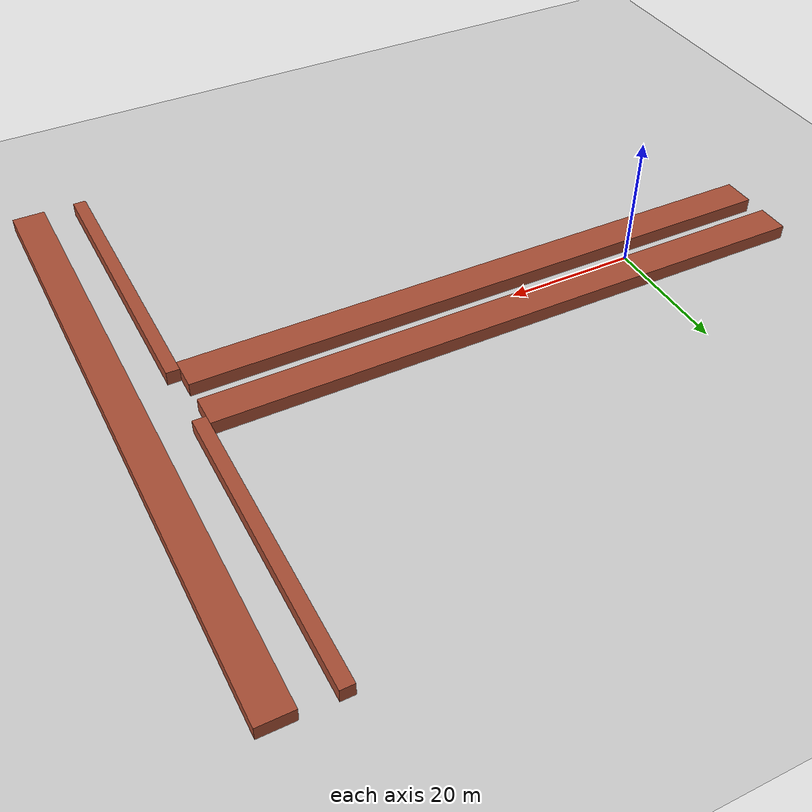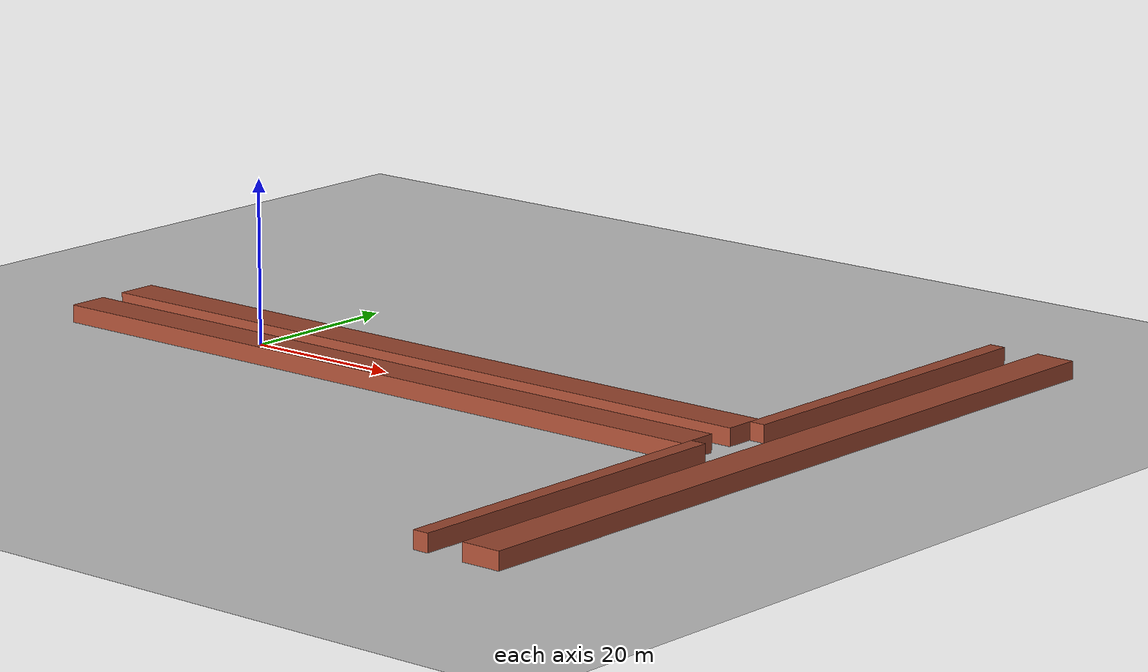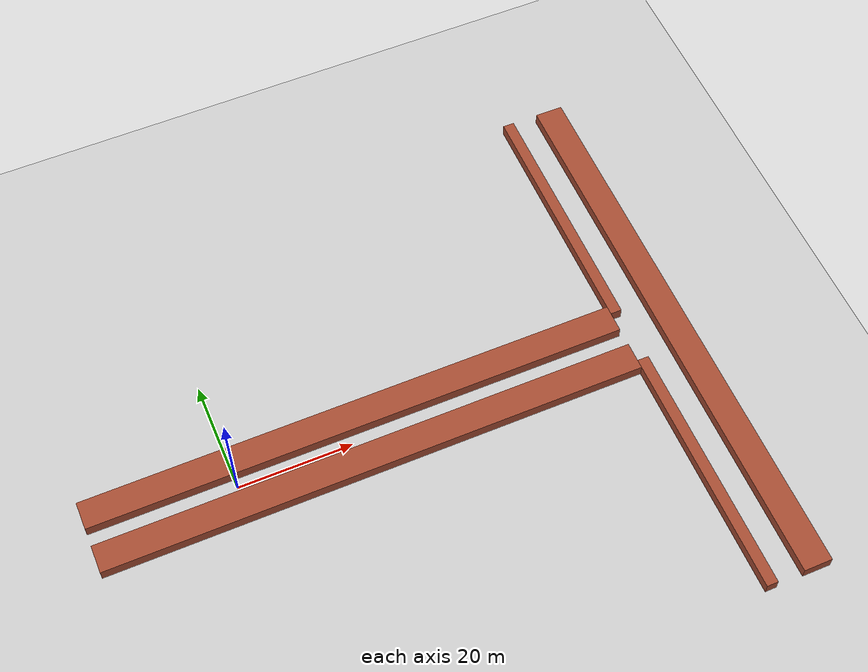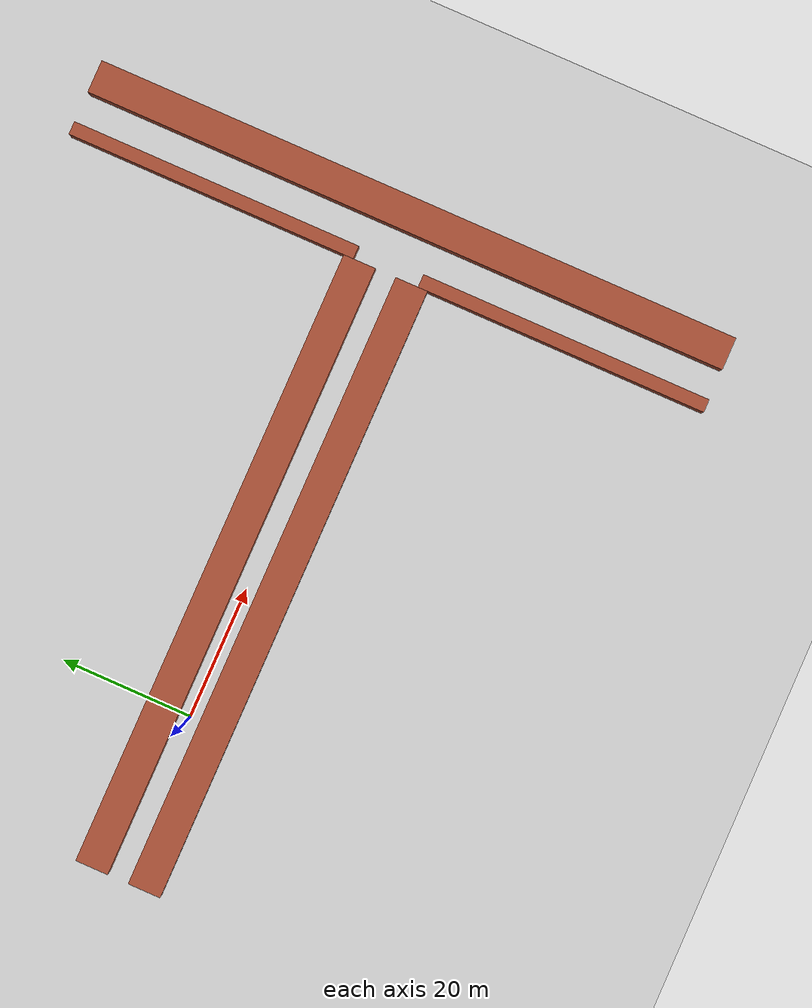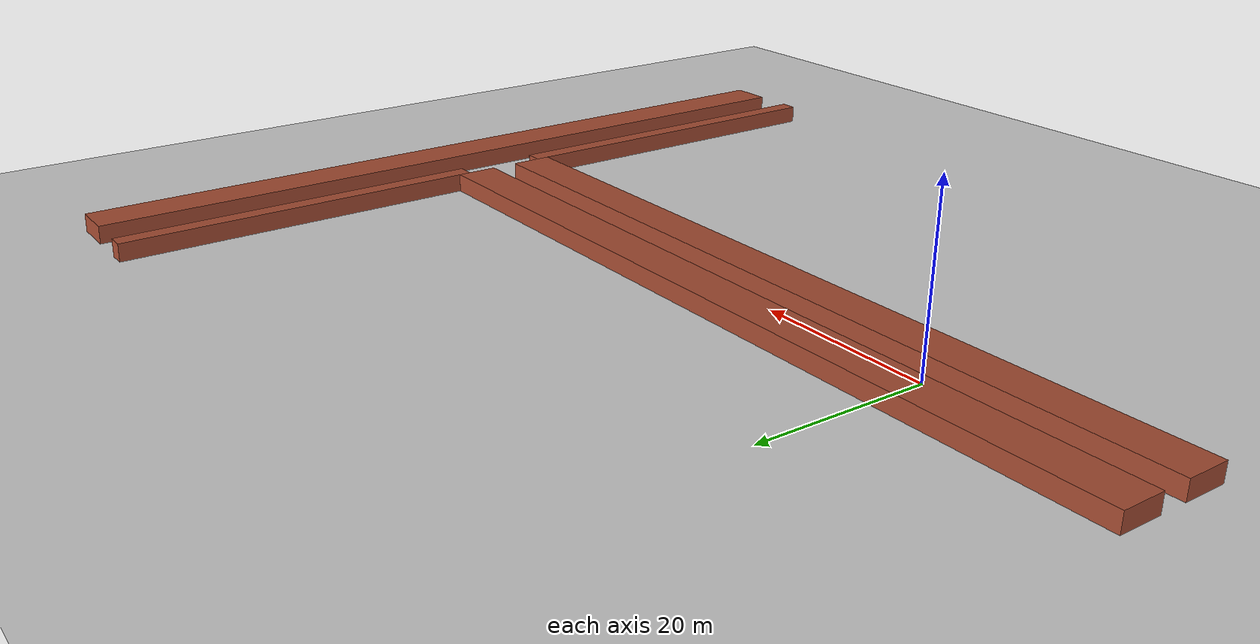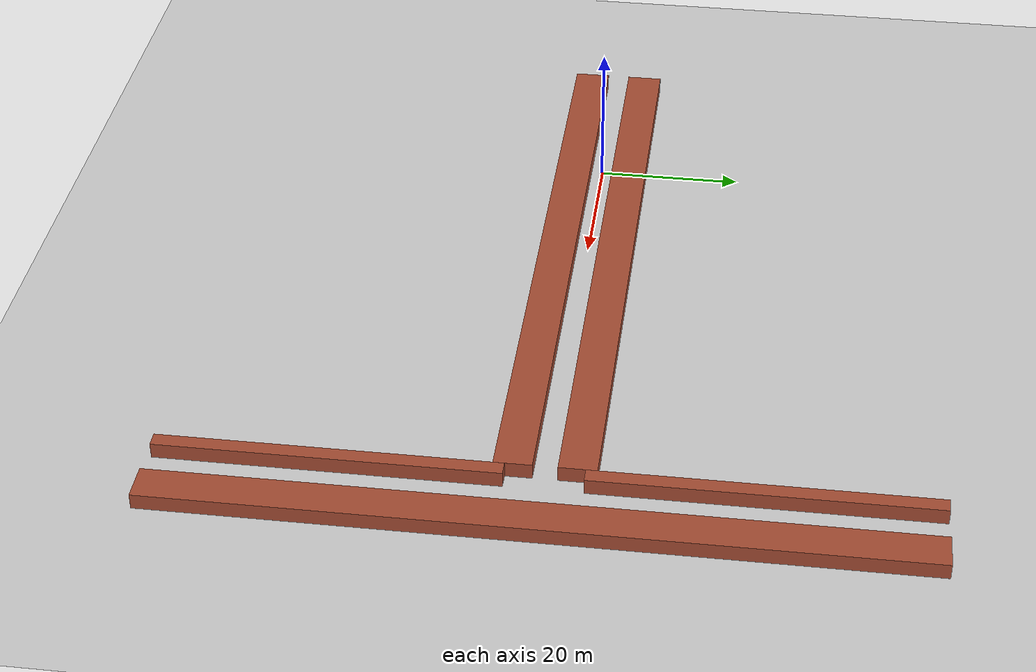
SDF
<?xml version="1.0" ?>
<sdf version="1.5">
  <world name="default">
    <plugin name='gazebo_ros_state' filename='libgazebo_ros_state.so'>
      <ros>
        <namespace>/plug</namespace>
        <argument>model_states:=model_states_plug</argument>
        <argument>link_states:=link_states_plug</argument>
      </ros>
      <update_rate>100.0</update_rate>
    </plugin>
    <light name='sun' type='directional'>
      <cast_shadows>1</cast_shadows>
      <pose>0 0 10 0 -0 0</pose>
      <diffuse>0.8 0.8 0.8 1</diffuse>
      <specular>0.2 0.2 0.2 1</specular>
      <attenuation>
        <range>1000</range>
        <constant>0.9</constant>
        <linear>0.01</linear>
        <quadratic>0.001</quadratic>
      </attenuation>
      <direction>-0.5 0.1 -0.9</direction>
      <spot>
        <inner_angle>0</inner_angle>
        <outer_angle>0</outer_angle>
        <falloff>0</falloff>
      </spot>
    </light>
    <model name='ground_plane'>
      <static>1</static>
      <link name='link'>
        <collision name='collision'>
          <geometry>
            <plane>
              <normal>0 0 1</normal>
              <size>300 300</size>
            </plane>
          </geometry>
          <surface>
            <contact>
              <collide_bitmask>65535</collide_bitmask>
              <ode/>
            </contact>
            <friction>
              <ode>
                <mu>100</mu>
                <mu2>50</mu2>
              </ode>
              <torsional>
                <ode/>
              </torsional>
            </friction>
            <bounce/>
          </surface>
          <max_contacts>10</max_contacts>
        </collision>
        <visual name='visual'>
          <cast_shadows>0</cast_shadows>
          <geometry>
            <plane>
              <normal>0 0 1</normal>
              <size>300 300</size>
            </plane>
          </geometry>
          <material>
            <script>
              <uri>file://media/materials/scripts/gazebo.material</uri>
              <name>Gazebo/Grey</name>
            </script>
          </material>
        </visual>
        <self_collide>0</self_collide>
        <enable_wind>0</enable_wind>
        <kinematic>0</kinematic>
      </link>
    </model>

    <model name='corridor_walls'>
      <static>1</static>

      <link name='main_wall_positive'>
        <pose>22.45 4.1 0.0 0 0 0</pose>
        <collision name='collision'>
          <geometry>
            <box>
              <size>94.9 5.0 4.0</size>
            </box>
          </geometry>
          <max_contacts>10</max_contacts>
          <surface>
            <contact><ode/></contact>
            <bounce/>
            <friction><ode/></friction>
          </surface>
        </collision>
        <visual name='visual'>
          <geometry>
            <box>
              <size>94.9 5.0 4.0</size>
            </box>
          </geometry>
          <material>
            <script>
              <uri>file://media/materials/scripts/gazebo.material</uri>
              <name>Gazebo/Bricks</name>
            </script>
          </material>
        </visual>
      </link>

      <link name='main_wall_negative'>
        <pose>22.45 -4.1 0.0 0 0 0</pose>
        <collision name='collision'>
          <geometry>
            <box>
              <size>94.9 5.0 4.0</size>
            </box>
          </geometry>
          <max_contacts>10</max_contacts>
          <surface>
            <contact><ode/></contact>
            <bounce/>
            <friction><ode/></friction>
          </surface>
        </collision>
        <visual name='visual'>
          <geometry>
            <box>
              <size>94.9 5.0 4.0</size>
            </box>
          </geometry>
          <material>
            <script>
              <uri>file://media/materials/scripts/gazebo.material</uri>
              <name>Gazebo/Bricks</name>
            </script>
          </material>
        </visual>
      </link>

      <link name='cross_wall_back'>
        <pose>79.1 0 0.0 0 0 0</pose>
        <collision name='collision'>
          <geometry>
            <box>
              <size>5.0 100.0 4.0</size>
            </box>
          </geometry>
          <max_contacts>10</max_contacts>
          <surface>
            <contact><ode/></contact>
            <bounce/>
            <friction><ode/></friction>
          </surface>
        </collision>
        <visual name='visual'>
          <geometry>
            <box>
              <size>5.0 100.0 4.0</size>
            </box>
          </geometry>
          <material>
            <script>
              <uri>file://media/materials/scripts/gazebo.material</uri>
              <name>Gazebo/Bricks</name>
            </script>
          </material>
        </visual>
      </link>

      <link name='cross_wall_front_positive'>
        <pose>70.9 27.55 0.0 0 0 0</pose>
        <collision name='collision'>
          <geometry>
            <box>
              <size>2.0 44.9 4.0</size>
            </box>
          </geometry>
          <max_contacts>10</max_contacts>
          <surface>
            <contact><ode/></contact>
            <bounce/>
            <friction><ode/></friction>
          </surface>
        </collision>
        <visual name='visual'>
          <geometry>
            <box>
              <size>2.0 44.9 4.0</size>
            </box>
          </geometry>
          <material>
            <script>
              <uri>file://media/materials/scripts/gazebo.material</uri>
              <name>Gazebo/Bricks</name>
            </script>
          </material>
        </visual>
      </link>

      <link name='cross_wall_front_negative'>
        <pose>70.9 -27.55 0.0 0 0 0</pose>
        <collision name='collision'>
          <geometry>
            <box>
              <size>2.0 44.9 4.0</size>
            </box>
          </geometry>
          <max_contacts>10</max_contacts>
          <surface>
            <contact><ode/></contact>
            <bounce/>
            <friction><ode/></friction>
          </surface>
        </collision>
        <visual name='visual'>
          <geometry>
            <box>
              <size>2.0 44.9 4.0</size>
            </box>
          </geometry>
          <material>
            <script>
              <uri>file://media/materials/scripts/gazebo.material</uri>
              <name>Gazebo/Bricks</name>
            </script>
          </material>
        </visual>
      </link>

    </model>

    <gravity>0 0 -9.8</gravity>
    <magnetic_field>6e-06 2.3e-05 -4.2e-05</magnetic_field>
    <atmosphere type='adiabatic'/>
    <physics type='ode'>
      <max_step_size>0.01</max_step_size>
      <real_time_factor>1</real_time_factor>
      <real_time_update_rate>100</real_time_update_rate>
    </physics>
    <scene>
      <ambient>0.4 0.4 0.4 1</ambient>
      <background>0.7 0.7 0.7 1</background>
      <shadows>1</shadows>
    </scene>
    <wind/>
    <spherical_coordinates>
      <surface_model>EARTH_WGS84</surface_model>
      <latitude_deg>0</latitude_deg>
      <longitude_deg>0</longitude_deg>
      <elevation>0</elevation>
      <heading_deg>0</heading_deg>
    </spherical_coordinates>
  </world>
</sdf>
